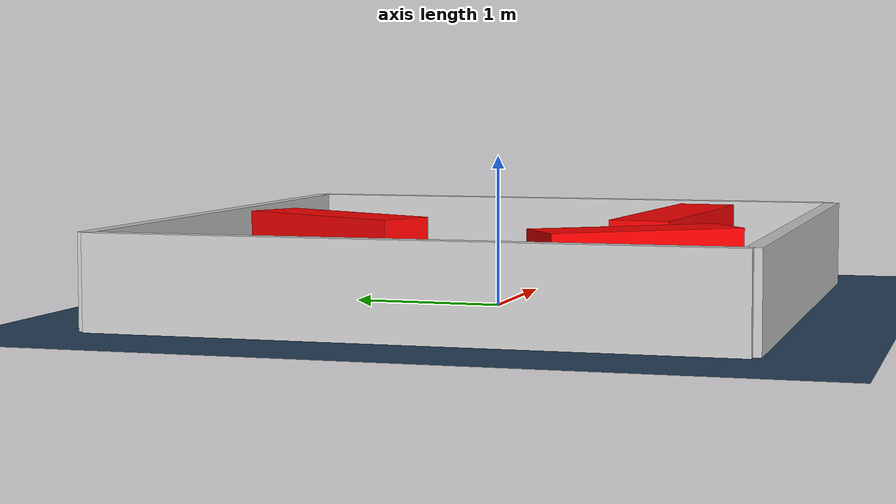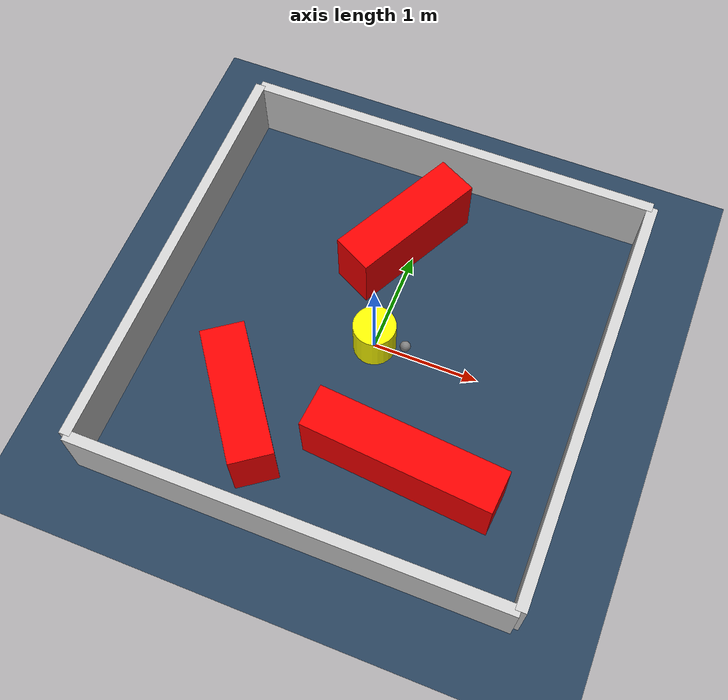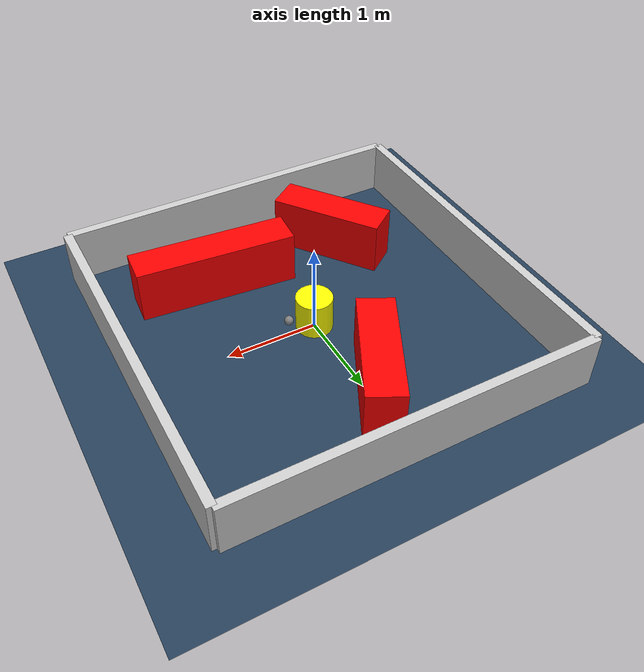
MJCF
<?xml version="1.0" ?>
<mujoco model="generated_environment">
  <option timestep="0.01" integrator="RK4" cone="elliptic"/>
  <default>
    <geom density="1"/>
  </default>
  <asset>
    <texture builtin="gradient" height="3072" rgb1="0.3 0.5 0.7" rgb2="0 0 0" type="skybox" width="512"/>
    <texture builtin="checker" height="300" mark="edge" markrgb="0.8 0.8 0.8" name="groundplane" rgb1="0.2 0.3 0.4" rgb2="0.1 0.2 0.3" type="2d" width="300"/>
    <material name="groundplane" reflectance="0.2" texrepeat="5 5" texture="groundplane" texuniform="true"/>
    <material name="robot" rgba="0.0 1.0 0.0 1"/>
  </asset>
  <worldbody>
    <light dir="0 0 -1" directional="true" pos="0 0 1.5"/>
    <geom condim="4" friction="1.0 0.005 0.001" material="groundplane" name="floor" size="0 0 0.05" type="plane"/>
    <body name="walls">
      <geom name="wall_1" condim="4" pos="-2.0 0.0 0.3" rgba="0.800000011920929 0.800000011920929 0.800000011920929 1.0" size="0.05 2.0 0.3" type="box"/>
      <geom name="wall_2" condim="4" pos="2.0 0.0 0.3" rgba="0.800000011920929 0.800000011920929 0.800000011920929 1.0" size="0.05 2.0 0.3" type="box"/>
      <geom name="wall_3" condim="4" pos="0.0 -2.0 0.3" rgba="0.800000011920929 0.800000011920929 0.800000011920929 1.0" size="2.0 0.05 0.3" type="box"/>
      <geom name="wall_4" condim="4" pos="0.0 2.0 0.3" rgba="0.800000011920929 0.800000011920929 0.800000011920929 1.0" size="2.0 0.05 0.3" type="box"/>
    </body>
    <body name="robot">
      <joint name="joint_x" type="slide" pos="0 0 0" axis="1 0 0"/>
      <joint name="joint_y" type="slide" pos="0 0 0" axis="0 1 0"/>
      <geom name="robot" type="sphere" pos="0.3 0.0 0.2" size="0.05" mass="5." friction="1.0 0.005 0.0001" condim="4" rgba="0.5 0.5 0.5 1.0"/>
      <site name="sensor_ball"/>
    </body>
    <body name="obstacle_movable_1">
      <geom name="obstacle_movable_1" condim="4" pos="0.0 0.0 0.2" euler="0 0 0.0" friction="1.0 0.005 0.001" rgba="1.0 1.0 0.0 1.0" size="0.2 0.2 0.0" type="cylinder" mass="0.1"/>
      <joint type="free"/>
    </body>
    <body name="obstacle_2_static">
      <geom name="obstacle_2_static" condim="4" pos="0.6821424738209856 -1.068826780475591 0.3" euler="0 0 175.24529020060098" friction="1.0 0.005 0.001" rgba="1 0 0 1" size="0.883472746451017 0.2 0.3" type="box"/>
    </body>
    <body name="obstacle_3_static">
      <geom name="obstacle_3_static" condim="4" pos="-0.12147970754548743 1.0980893360066382 0.3" euler="0 0 242.7946285355818" friction="1.0 0.005 0.001" rgba="1 0 0 1" size="0.6649256636697347 0.2 0.3" type="box"/>
    </body>
    <body name="obstacle_4_static">
      <geom name="obstacle_4_static" condim="4" pos="-0.8338706864823832 -1.1092754399374818 0.3" euler="0 0 125.98432669105537" friction="1.0 0.005 0.001" rgba="1 0 0 1" size="0.6389211395403203 0.2 0.3" type="box"/>
    </body>
  </worldbody>
  <actuator>
    <motor name="actuator_x" joint="joint_x" gear="1" ctrlrange="-1 1"/>
    <motor name="actuator_y" joint="joint_y" gear="1" ctrlrange="-1 1"/>
  </actuator>
</mujoco>
